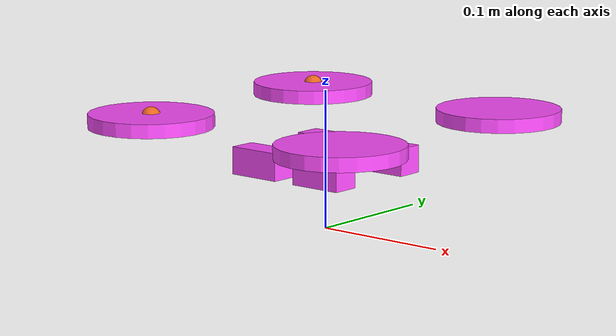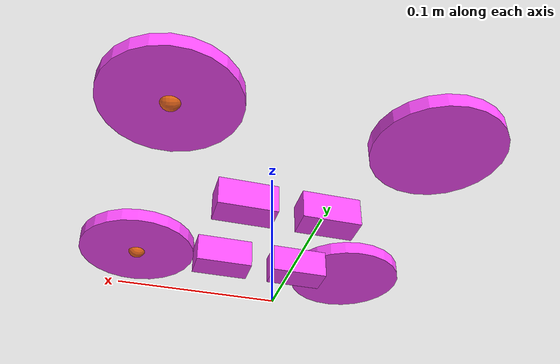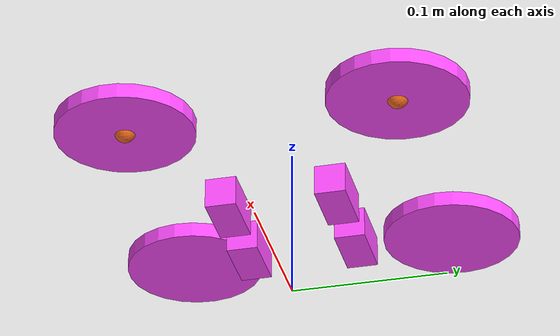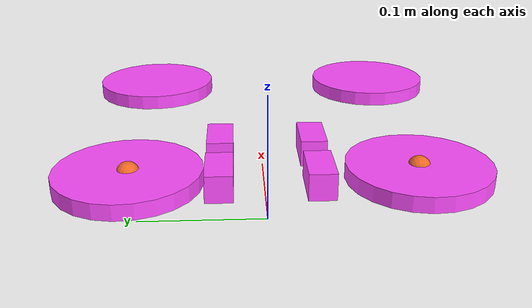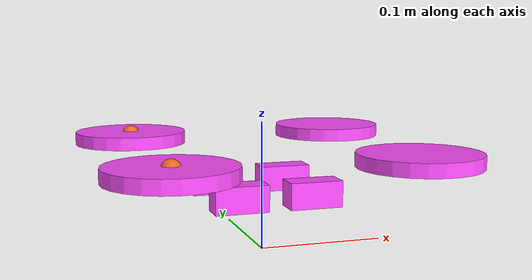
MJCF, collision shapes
<mujoco model="drone-v1-local">
  <compiler angle="radian" meshdir="meshes/"/>

  <asset>
    <texture name="texplane" type="2d" builtin="flat" rgb1="0.95 0.95 0.95" width="5120" height="5120"/>
    <material name="MatPlane" texture="texplane" texrepeat="1 1" texuniform="true" reflectance="0"/>
    <mesh name="Main_body" file="main_body.STL"/>
    <mesh name="Blade" file="FR_blade.STL"/>
  </asset>

  <default>
    <light castshadow="false"/>
    <geom rgba="0.8 0.8 0.8 1"/>

    <default class="drone_driver">
      <joint limited="true" range="-1.5 1.5" damping="0.1" armature="0.001"/>
      <geom contype="1" conaffinity="1" condim="4" group="1" margin="0.001"/>

      <default class="main_body">
        <geom type="mesh" contype="0" conaffinity="0" group="1" rgba="1 1 1 1" mass="0"/>
      </default>

      <default class="blade">
        <geom type="mesh" mesh="Blade" contype="0" conaffinity="0" group="1" rgba="0.3 1 0.3 1" mass="0"/>
      </default>

      <default class="rotor_joint">
        <joint type="hinge" limited="false" damping="0.02" armature="0.0005"/>
      </default>

      <default class="collision">
        <geom contype="1" conaffinity="1" group="4" rgba="1 0.3 1 0.5" friction="2 0.0005 0.00001"/>
      </default>
    </default>
  </default>

  <visual>
    <headlight ambient="0.5 0.5 0.5"/>
  </visual>

  <worldbody>
    <light pos="0 0 1000" directional="false" diffuse="0.3 0.3 0.3" specular="0.3 0.3 0.3"/>

    <body name="drone_frame" pos="0 0 0">
      <joint name="drone_free" type="free"/>
      <body name="camera" pos="-0.5 0 0" euler="0 0 -1.570796">
      <camera name="indi_eye_camera"  pos="0 0 0"  fovy="90"/>
      </body>
      <!-- 装配角与网格/USD 一致；推力在 DroneOrcaEnv 中按世界 +Z 换算，不依赖机体系 +Z 竖直。 -->
      <body name="Drone" childclass="drone_driver" pos="0 0 0.06" euler="-1.570796 -0.785398 0">
        <site name="drone_body_center_site" pos="0 0 0" group="3" size="0.008" rgba="1 1 0 0.8"/>
        <site name="drone_forward_site" pos="0.12 0 0" size="0.006" group="3" rgba="0 1 0 0.8"/>
        <site name="drone_up_site" pos="0 0.12 0" size="0.006" group="3" rgba="0 0.7 1 0.8"/>

        <geom name="Main_body" class="main_body" mesh="Main_body" rgba="1 0.3 0.3 1"/>
        <geom name="Main_body_col_1" class="collision" type="box" pos="0.045 0.01 0.005" size="0.01 0.01 0.02" euler="0 -0.785398 0"/>
        <geom name="Main_body_col_2" class="collision" type="box" pos="-0.045 0.01 -0.005" size="0.01 0.01 0.02" euler="0 -0.785398 0"/>
        <geom name="Main_body_col_3" class="collision" type="box" pos="0.005 0.01 0.045" size="0.01 0.01 0.02" euler="0 -0.785398 0"/>
        <geom name="Main_body_col_4" class="collision" type="box" pos="-0.005 0.01 -0.045" size="0.01 0.01 0.02" euler="0 -0.785398 0"/>

        <inertial pos="1.51341e-05 -0.0114215 -1.51759e-05" quat="0.653416 0.270518 0.27062 0.653171" mass="0.153935" diaginertia="0.00022914 0.000122973 0.000121538"/>

        <body name="FL_blade" pos="0.123715 -0.018 0" quat="0 -0.950714 0 -0.310071">
          <inertial pos="0 0.0025 0" quat="0.5 0.5 0.5 0.5" mass="0.00736933" diaginertia="9.62503e-06 4.82787e-06 4.82787e-06"/>
          <joint class="rotor_joint" name="FL_joint" pos="0 0 0" axis="0 1 0"/>
          <site name="rotor_fl_site" pos="0 0 0" size="0.007" rgba="1 0.5 0 0.8"/>
          <geom class="blade"/>
          <geom name="FL_blade_col" class="collision" type="cylinder" pos="0 0.0025 0" size="0.045 0.005" euler="1.570796 0 0"/>
        </body>

        <body name="FR_blade" pos="0 -0.018 -0.123715" quat="0 -0.951214 0 0.308532">
          <inertial pos="0 0.0025 0" quat="0.707107 0 0 0.707107" mass="0.00736933" diaginertia="9.62503e-06 4.82787e-06 4.82787e-06"/>
          <joint class="rotor_joint" name="FR_joint" pos="0 0 0" axis="0 1 0"/>
          <site name="rotor_fr_site" pos="0 0 0" size="0.007" rgba="1 0.5 0 0.8"/>
          <geom class="blade"/>
          <geom name="FR_blade_col" class="collision" type="cylinder" pos="0 0.0025 0" size="0.045 0.005" euler="1.570796 0 0"/>
        </body>

        <body name="BL_blade" pos="0 -0.023 0.123715" quat="0.630389 0 -0.77628 0">
          <inertial pos="0 -0.0025 0" quat="0.707107 0 0 0.707107" mass="0.00736933" diaginertia="9.62503e-06 4.82787e-06 4.82787e-06"/>
          <joint class="rotor_joint" name="BL_joint" pos="0 0 0" axis="0 1 0"/>
          <site name="rotor_bl_site" pos="0 0 0" size="0.007" rgba="1 0.5 0 0.8"/>
          <geom class="blade"/>
          <geom name="BL_blade_col" class="collision" type="cylinder" pos="0 0.0025 0" size="0.045 0.005" euler="1.570796 0 0"/>
        </body>

        <body name="BR_blade" pos="-0.123715 -0.023 0" quat="0.28506 0 -0.95851 0">
          <inertial pos="0 -0.0025 0" quat="0.707107 0 0 0.707107" mass="0.00736933" diaginertia="9.62503e-06 4.82787e-06 4.82787e-06"/>
          <joint class="rotor_joint" name="BR_joint" pos="0 0 0" axis="0 1 0"/>
          <site name="rotor_br_site" pos="0 0 0" size="0.007" rgba="1 0.5 0 0.8"/>
          <geom class="blade"/>
          <geom name="BR_blade_col" class="collision" type="cylinder" pos="0 0.0025 0" size="0.045 0.005" euler="1.570796 0 0"/>
        </body>
      </body>
    </body>
  </worldbody>
</mujoco>
